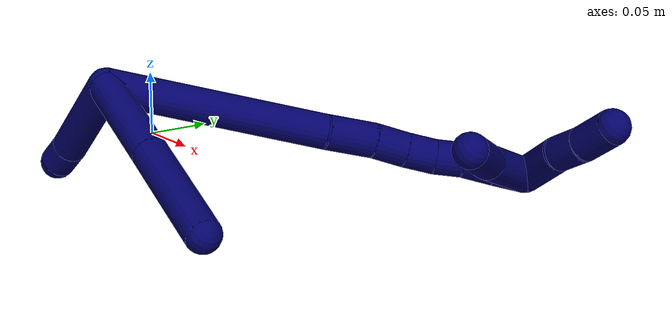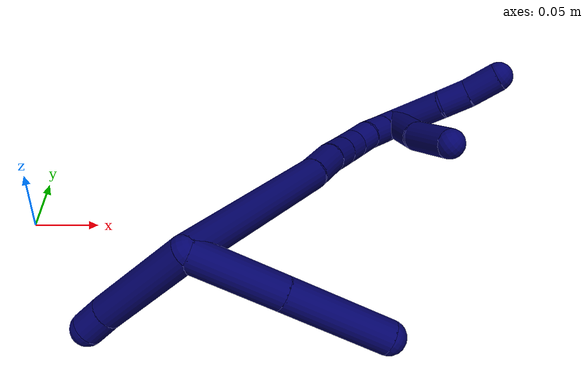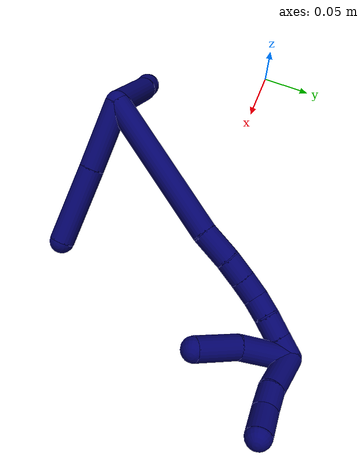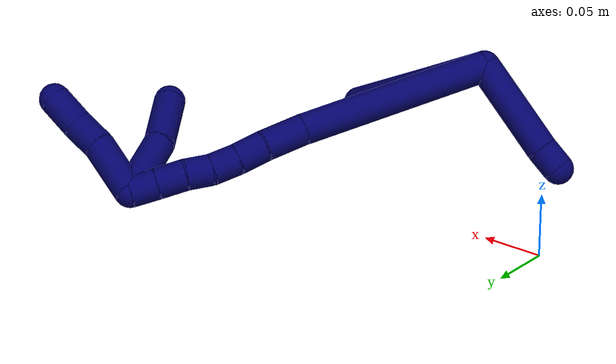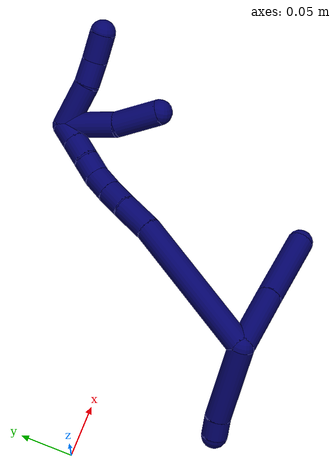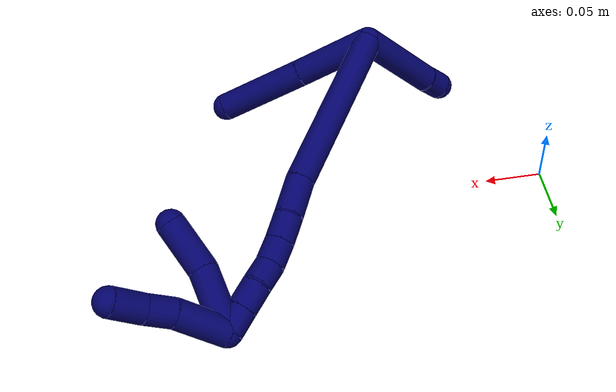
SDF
<sdf version="1.7">
 <world name="default">
  <model name="7">
   <static>0</static>
   <link name="7">
    <collision name="collision-cylinder-e_1_2_8">
     <pose>0.031511 -0.010184 0.01132 0.732612 1.12065 0.472385</pose>
     <geometry><cylinder><radius>0.0125</radius><length>0.069994</length></cylinder></geometry>
     <surface>
      <friction><ode><mu>1.16</mu><mu2>1.16</mu2><slip1>0</slip1><slip2>0</slip2></ode></friction>
      <contact><ode><kp>1e+06</kp><kd>1</kd><max_vel>0</max_vel><min_depth>0.001</min_depth></ode></contact>
     </surface>
    </collision>
    <visual name="visual-cylinder-e_1_2_8">
     <pose>0.031511 -0.010184 0.01132 0.732612 1.12065 0.472385</pose>
     <geometry><cylinder><radius>0.0125</radius><length>0.069994</length></cylinder></geometry>
     <material><ambient>0.003922 0 0.403922 1</ambient></material>
    </visual>
    <collision name="collision-cylinder-e_2_8_6">
     <pose>0.09883 -0.032383 0.035819 0.739254 1.10872 0.470842</pose>
     <geometry><cylinder><radius>0.0125</radius><length>0.080006</length></cylinder></geometry>
     <surface>
      <friction><ode><mu>1.16</mu><mu2>1.16</mu2><slip1>0</slip1><slip2>0</slip2></ode></friction>
      <contact><ode><kp>1e+06</kp><kd>1</kd><max_vel>0</max_vel><min_depth>0.001</min_depth></ode></contact>
     </surface>
    </collision>
    <visual name="visual-cylinder-e_2_8_6">
     <pose>0.09883 -0.032383 0.035819 0.739254 1.10872 0.470842</pose>
     <geometry><cylinder><radius>0.0125</radius><length>0.080006</length></cylinder></geometry>
     <material><ambient>0.003922 0 0.403922 1</ambient></material>
    </visual>
    <collision name="collision-cylinder-e_1_2_9">
     <pose>0.000787 0.001035 -0.039864 -3.11563 0.019724 -1.29938</pose>
     <geometry><cylinder><radius>0.0125</radius><length>0.079769</length></cylinder></geometry>
     <surface>
      <friction><ode><mu>1.16</mu><mu2>1.16</mu2><slip1>0</slip1><slip2>0</slip2></ode></friction>
      <contact><ode><kp>1e+06</kp><kd>1</kd><max_vel>0</max_vel><min_depth>0.001</min_depth></ode></contact>
     </surface>
    </collision>
    <visual name="visual-cylinder-e_1_2_9">
     <pose>0.000787 0.001035 -0.039864 -3.11563 0.019724 -1.29938</pose>
     <geometry><cylinder><radius>0.0125</radius><length>0.079769</length></cylinder></geometry>
     <material><ambient>0.003922 0 0.403922 1</ambient></material>
    </visual>
    <collision name="collision-cylinder-e_2_9_5">
     <pose>0.001452 0.001177 -0.089802 3.05314 -0.011969 -0.268837</pose>
     <geometry><cylinder><radius>0.0125</radius><length>0.020231</length></cylinder></geometry>
     <surface>
      <friction><ode><mu>1.16</mu><mu2>1.16</mu2><slip1>0</slip1><slip2>0</slip2></ode></friction>
      <contact><ode><kp>1e+06</kp><kd>1</kd><max_vel>0</max_vel><min_depth>0.001</min_depth></ode></contact>
     </surface>
    </collision>
    <visual name="visual-cylinder-e_2_9_5">
     <pose>0.001452 0.001177 -0.089802 3.05314 -0.011969 -0.268837</pose>
     <geometry><cylinder><radius>0.0125</radius><length>0.020231</length></cylinder></geometry>
     <material><ambient>0.003922 0 0.403922 1</ambient></material>
    </visual>
    <collision name="collision-cylinder-e_1_2_10">
     <pose>0.055015 0.050613 0.019951 -1.19531 0.790985 -0.553769</pose>
     <geometry><cylinder><radius>0.0125</radius><length>0.154743</length></cylinder></geometry>
     <surface>
      <friction><ode><mu>1.16</mu><mu2>1.16</mu2><slip1>0</slip1><slip2>0</slip2></ode></friction>
      <contact><ode><kp>1e+06</kp><kd>1</kd><max_vel>0</max_vel><min_depth>0.001</min_depth></ode></contact>
     </surface>
    </collision>
    <visual name="visual-cylinder-e_1_2_10">
     <pose>0.055015 0.050613 0.019951 -1.19531 0.790985 -0.553769</pose>
     <geometry><cylinder><radius>0.0125</radius><length>0.154743</length></cylinder></geometry>
     <material><ambient>0.003922 0 0.403922 1</ambient></material>
    </visual>
    <collision name="collision-cylinder-e_2_10_11">
     <pose>0.121255 0.113883 0.042951 -1.33441 0.711564 -0.569514</pose>
     <geometry><cylinder><radius>0.0125</radius><length>0.034381</length></cylinder></geometry>
     <surface>
      <friction><ode><mu>1.16</mu><mu2>1.16</mu2><slip1>0</slip1><slip2>0</slip2></ode></friction>
      <contact><ode><kp>1e+06</kp><kd>1</kd><max_vel>0</max_vel><min_depth>0.001</min_depth></ode></contact>
     </surface>
    </collision>
    <visual name="visual-cylinder-e_2_10_11">
     <pose>0.121255 0.113883 0.042951 -1.33441 0.711564 -0.569514</pose>
     <geometry><cylinder><radius>0.0125</radius><length>0.034381</length></cylinder></geometry>
     <material><ambient>0.003922 0 0.403922 1</ambient></material>
    </visual>
    <collision name="collision-cylinder-e_3_11_12">
     <pose>0.141106 0.134517 0.047565 -1.37711 0.815035 -0.682665</pose>
     <geometry><cylinder><radius>0.0125</radius><length>0.023705</length></cylinder></geometry>
     <surface>
      <friction><ode><mu>1.16</mu><mu2>1.16</mu2><slip1>0</slip1><slip2>0</slip2></ode></friction>
      <contact><ode><kp>1e+06</kp><kd>1</kd><max_vel>0</max_vel><min_depth>0.001</min_depth></ode></contact>
     </surface>
    </collision>
    <visual name="visual-cylinder-e_3_11_12">
     <pose>0.141106 0.134517 0.047565 -1.37711 0.815035 -0.682665</pose>
     <geometry><cylinder><radius>0.0125</radius><length>0.023705</length></cylinder></geometry>
     <material><ambient>0.003922 0 0.403922 1</ambient></material>
    </visual>
    <collision name="collision-cylinder-e_4_12_13">
     <pose>0.157501 0.149751 0.051404 -1.26712 0.796052 -0.599145</pose>
     <geometry><cylinder><radius>0.0125</radius><length>0.021745</length></cylinder></geometry>
     <surface>
      <friction><ode><mu>1.16</mu><mu2>1.16</mu2><slip1>0</slip1><slip2>0</slip2></ode></friction>
      <contact><ode><kp>1e+06</kp><kd>1</kd><max_vel>0</max_vel><min_depth>0.001</min_depth></ode></contact>
     </surface>
    </collision>
    <visual name="visual-cylinder-e_4_12_13">
     <pose>0.157501 0.149751 0.051404 -1.26712 0.796052 -0.599145</pose>
     <geometry><cylinder><radius>0.0125</radius><length>0.021745</length></cylinder></geometry>
     <material><ambient>0.003922 0 0.403922 1</ambient></material>
    </visual>
    <collision name="collision-cylinder-e_5_13_14">
     <pose>0.172179 0.163391 0.057767 -1.00104 0.73912 -0.417577</pose>
     <geometry><cylinder><radius>0.0125</radius><length>0.020511</length></cylinder></geometry>
     <surface>
      <friction><ode><mu>1.16</mu><mu2>1.16</mu2><slip1>0</slip1><slip2>0</slip2></ode></friction>
      <contact><ode><kp>1e+06</kp><kd>1</kd><max_vel>0</max_vel><min_depth>0.001</min_depth></ode></contact>
     </surface>
    </collision>
    <visual name="visual-cylinder-e_5_13_14">
     <pose>0.172179 0.163391 0.057767 -1.00104 0.73912 -0.417577</pose>
     <geometry><cylinder><radius>0.0125</radius><length>0.020511</length></cylinder></geometry>
     <material><ambient>0.003922 0 0.403922 1</ambient></material>
    </visual>
    <collision name="collision-cylinder-e_6_14_15">
     <pose>0.188023 0.176406 0.065401 -1.07988 0.871111 -0.544002</pose>
     <geometry><cylinder><radius>0.0125</radius><length>0.023359</length></cylinder></geometry>
     <surface>
      <friction><ode><mu>1.16</mu><mu2>1.16</mu2><slip1>0</slip1><slip2>0</slip2></ode></friction>
      <contact><ode><kp>1e+06</kp><kd>1</kd><max_vel>0</max_vel><min_depth>0.001</min_depth></ode></contact>
     </surface>
    </collision>
    <visual name="visual-cylinder-e_6_14_15">
     <pose>0.188023 0.176406 0.065401 -1.07988 0.871111 -0.544002</pose>
     <geometry><cylinder><radius>0.0125</radius><length>0.023359</length></cylinder></geometry>
     <material><ambient>0.003922 0 0.403922 1</ambient></material>
    </visual>
    <collision name="collision-cylinder-e_7_15_1">
     <pose>0.205068 0.189273 0.072346 -1.0716 0.851636 -0.526119</pose>
     <geometry><cylinder><radius>0.0125</radius><length>0.021557</length></cylinder></geometry>
     <surface>
      <friction><ode><mu>1.16</mu><mu2>1.16</mu2><slip1>0</slip1><slip2>0</slip2></ode></friction>
      <contact><ode><kp>1e+06</kp><kd>1</kd><max_vel>0</max_vel><min_depth>0.001</min_depth></ode></contact>
     </surface>
    </collision>
    <visual name="visual-cylinder-e_7_15_1">
     <pose>0.205068 0.189273 0.072346 -1.0716 0.851636 -0.526119</pose>
     <geometry><cylinder><radius>0.0125</radius><length>0.021557</length></cylinder></geometry>
     <material><ambient>0.003922 0 0.403922 1</ambient></material>
    </visual>
    <collision name="collision-cylinder-e_1_1_16">
     <pose>0.20407 0.172384 0.08678 1.12551 -0.341498 -0.216682</pose>
     <geometry><cylinder><radius>0.0125</radius><length>0.054383</length></cylinder></geometry>
     <surface>
      <friction><ode><mu>1.16</mu><mu2>1.16</mu2><slip1>0</slip1><slip2>0</slip2></ode></friction>
      <contact><ode><kp>1e+06</kp><kd>1</kd><max_vel>0</max_vel><min_depth>0.001</min_depth></ode></contact>
     </surface>
    </collision>
    <visual name="visual-cylinder-e_1_1_16">
     <pose>0.20407 0.172384 0.08678 1.12551 -0.341498 -0.216682</pose>
     <geometry><cylinder><radius>0.0125</radius><length>0.054383</length></cylinder></geometry>
     <material><ambient>0.003922 0 0.403922 1</ambient></material>
    </visual>
    <collision name="collision-cylinder-e_2_16_4">
     <pose>0.190908 0.13126 0.111223 0.930625 -0.178793 -0.089948</pose>
     <geometry><cylinder><radius>0.0125</radius><length>0.045617</length></cylinder></geometry>
     <surface>
      <friction><ode><mu>1.16</mu><mu2>1.16</mu2><slip1>0</slip1><slip2>0</slip2></ode></friction>
      <contact><ode><kp>1e+06</kp><kd>1</kd><max_vel>0</max_vel><min_depth>0.001</min_depth></ode></contact>
     </surface>
    </collision>
    <visual name="visual-cylinder-e_2_16_4">
     <pose>0.190908 0.13126 0.111223 0.930625 -0.178793 -0.089948</pose>
     <geometry><cylinder><radius>0.0125</radius><length>0.045617</length></cylinder></geometry>
     <material><ambient>0.003922 0 0.403922 1</ambient></material>
    </visual>
    <collision name="collision-cylinder-e_1_1_17">
     <pose>0.215838 0.190298 0.098403 0.225976 0.113968 0.012946</pose>
     <geometry><cylinder><radius>0.0125</radius><length>0.046803</length></cylinder></geometry>
     <surface>
      <friction><ode><mu>1.16</mu><mu2>1.16</mu2><slip1>0</slip1><slip2>0</slip2></ode></friction>
      <contact><ode><kp>1e+06</kp><kd>1</kd><max_vel>0</max_vel><min_depth>0.001</min_depth></ode></contact>
     </surface>
    </collision>
    <visual name="visual-cylinder-e_1_1_17">
     <pose>0.215838 0.190298 0.098403 0.225976 0.113968 0.012946</pose>
     <geometry><cylinder><radius>0.0125</radius><length>0.046803</length></cylinder></geometry>
     <material><ambient>0.003922 0 0.403922 1</ambient></material>
    </visual>
    <collision name="collision-cylinder-e_2_17_18">
     <pose>0.221638 0.18409 0.132911 0.084026 0.258108 0.010911</pose>
     <geometry><cylinder><radius>0.0125</radius><length>0.024596</length></cylinder></geometry>
     <surface>
      <friction><ode><mu>1.16</mu><mu2>1.16</mu2><slip1>0</slip1><slip2>0</slip2></ode></friction>
      <contact><ode><kp>1e+06</kp><kd>1</kd><max_vel>0</max_vel><min_depth>0.001</min_depth></ode></contact>
     </surface>
    </collision>
    <visual name="visual-cylinder-e_2_17_18">
     <pose>0.221638 0.18409 0.132911 0.084026 0.258108 0.010911</pose>
     <geometry><cylinder><radius>0.0125</radius><length>0.024596</length></cylinder></geometry>
     <material><ambient>0.003922 0 0.403922 1</ambient></material>
    </visual>
    <collision name="collision-cylinder-e_3_18_3">
     <pose>0.226907 0.182575 0.158891 0.036572 0.149461 0.002738</pose>
     <geometry><cylinder><radius>0.0125</radius><length>0.028601</length></cylinder></geometry>
     <surface>
      <friction><ode><mu>1.16</mu><mu2>1.16</mu2><slip1>0</slip1><slip2>0</slip2></ode></friction>
      <contact><ode><kp>1e+06</kp><kd>1</kd><max_vel>0</max_vel><min_depth>0.001</min_depth></ode></contact>
     </surface>
    </collision>
    <visual name="visual-cylinder-e_3_18_3">
     <pose>0.226907 0.182575 0.158891 0.036572 0.149461 0.002738</pose>
     <geometry><cylinder><radius>0.0125</radius><length>0.028601</length></cylinder></geometry>
     <material><ambient>0.003922 0 0.403922 1</ambient></material>
    </visual>
    <collision name="collision-sphere-3">
     <pose>0.229036 0.182058 0.173023 0 -0 0</pose>
     <geometry><sphere><radius>0.0125</radius></sphere></geometry>
     <surface>
      <friction><ode><mu>1.16</mu><mu2>1.16</mu2><slip1>0</slip1><slip2>0</slip2></ode></friction>
      <contact><ode><kp>1e+06</kp><kd>1</kd><max_vel>0</max_vel><min_depth>0.001</min_depth></ode></contact>
     </surface>
    </collision>
    <visual name="visual-sphere-3">
     <pose>0.229036 0.182058 0.173023 0 -0 0</pose>
     <geometry><sphere><radius>0.0125</radius></sphere></geometry>
     <material><ambient>0.003922 0 0.403922 1</ambient></material>
    </visual>
    <collision name="collision-sphere-10">
     <pose>0.11003 0.101226 0.039903 0 -0 0</pose>
     <geometry><sphere><radius>0.0125</radius></sphere></geometry>
     <surface>
      <friction><ode><mu>1.16</mu><mu2>1.16</mu2><slip1>0</slip1><slip2>0</slip2></ode></friction>
      <contact><ode><kp>1e+06</kp><kd>1</kd><max_vel>0</max_vel><min_depth>0.001</min_depth></ode></contact>
     </surface>
    </collision>
    <visual name="visual-sphere-10">
     <pose>0.11003 0.101226 0.039903 0 -0 0</pose>
     <geometry><sphere><radius>0.0125</radius></sphere></geometry>
     <material><ambient>0.003922 0 0.403922 1</ambient></material>
    </visual>
    <collision name="collision-sphere-5">
     <pose>0.001331 0.000283 -0.099877 0 -0 0</pose>
     <geometry><sphere><radius>0.0125</radius></sphere></geometry>
     <surface>
      <friction><ode><mu>1.16</mu><mu2>1.16</mu2><slip1>0</slip1><slip2>0</slip2></ode></friction>
      <contact><ode><kp>1e+06</kp><kd>1</kd><max_vel>0</max_vel><min_depth>0.001</min_depth></ode></contact>
     </surface>
    </collision>
    <visual name="visual-sphere-5">
     <pose>0.001331 0.000283 -0.099877 0 -0 0</pose>
     <geometry><sphere><radius>0.0125</radius></sphere></geometry>
     <material><ambient>0.003922 0 0.403922 1</ambient></material>
    </visual>
    <collision name="collision-sphere-6">
     <pose>0.134637 -0.044398 0.048997 0 -0 0</pose>
     <geometry><sphere><radius>0.0125</radius></sphere></geometry>
     <surface>
      <friction><ode><mu>1.16</mu><mu2>1.16</mu2><slip1>0</slip1><slip2>0</slip2></ode></friction>
      <contact><ode><kp>1e+06</kp><kd>1</kd><max_vel>0</max_vel><min_depth>0.001</min_depth></ode></contact>
     </surface>
    </collision>
    <visual name="visual-sphere-6">
     <pose>0.134637 -0.044398 0.048997 0 -0 0</pose>
     <geometry><sphere><radius>0.0125</radius></sphere></geometry>
     <material><ambient>0.003922 0 0.403922 1</ambient></material>
    </visual>
    <collision name="collision-sphere-9">
     <pose>0.001573 0.00207 -0.079727 0 -0 0</pose>
     <geometry><sphere><radius>0.0125</radius></sphere></geometry>
     <surface>
      <friction><ode><mu>1.16</mu><mu2>1.16</mu2><slip1>0</slip1><slip2>0</slip2></ode></friction>
      <contact><ode><kp>1e+06</kp><kd>1</kd><max_vel>0</max_vel><min_depth>0.001</min_depth></ode></contact>
     </surface>
    </collision>
    <visual name="visual-sphere-9">
     <pose>0.001573 0.00207 -0.079727 0 -0 0</pose>
     <geometry><sphere><radius>0.0125</radius></sphere></geometry>
     <material><ambient>0.003922 0 0.403922 1</ambient></material>
    </visual>
    <collision name="collision-sphere-2">
     <geometry><sphere><radius>0.0125</radius></sphere></geometry>
     <surface>
      <friction><ode><mu>1.16</mu><mu2>1.16</mu2><slip1>0</slip1><slip2>0</slip2></ode></friction>
      <contact><ode><kp>1e+06</kp><kd>1</kd><max_vel>0</max_vel><min_depth>0.001</min_depth></ode></contact>
     </surface>
    </collision>
    <visual name="visual-sphere-2">
     <geometry><sphere><radius>0.0125</radius></sphere></geometry>
     <material><ambient>0.003922 0 0.403922 1</ambient></material>
    </visual>
    <collision name="collision-sphere-8">
     <pose>0.063022 -0.020368 0.02264 0 -0 0</pose>
     <geometry><sphere><radius>0.0125</radius></sphere></geometry>
     <surface>
      <friction><ode><mu>1.16</mu><mu2>1.16</mu2><slip1>0</slip1><slip2>0</slip2></ode></friction>
      <contact><ode><kp>1e+06</kp><kd>1</kd><max_vel>0</max_vel><min_depth>0.001</min_depth></ode></contact>
     </surface>
    </collision>
    <visual name="visual-sphere-8">
     <pose>0.063022 -0.020368 0.02264 0 -0 0</pose>
     <geometry><sphere><radius>0.0125</radius></sphere></geometry>
     <material><ambient>0.003922 0 0.403922 1</ambient></material>
    </visual>
    <collision name="collision-sphere-11">
     <pose>0.132481 0.12654 0.046 0 -0 0</pose>
     <geometry><sphere><radius>0.0125</radius></sphere></geometry>
     <surface>
      <friction><ode><mu>1.16</mu><mu2>1.16</mu2><slip1>0</slip1><slip2>0</slip2></ode></friction>
      <contact><ode><kp>1e+06</kp><kd>1</kd><max_vel>0</max_vel><min_depth>0.001</min_depth></ode></contact>
     </surface>
    </collision>
    <visual name="visual-sphere-11">
     <pose>0.132481 0.12654 0.046 0 -0 0</pose>
     <geometry><sphere><radius>0.0125</radius></sphere></geometry>
     <material><ambient>0.003922 0 0.403922 1</ambient></material>
    </visual>
    <collision name="collision-sphere-12">
     <pose>0.149732 0.142494 0.04913 0 -0 0</pose>
     <geometry><sphere><radius>0.0125</radius></sphere></geometry>
     <surface>
      <friction><ode><mu>1.16</mu><mu2>1.16</mu2><slip1>0</slip1><slip2>0</slip2></ode></friction>
      <contact><ode><kp>1e+06</kp><kd>1</kd><max_vel>0</max_vel><min_depth>0.001</min_depth></ode></contact>
     </surface>
    </collision>
    <visual name="visual-sphere-12">
     <pose>0.149732 0.142494 0.04913 0 -0 0</pose>
     <geometry><sphere><radius>0.0125</radius></sphere></geometry>
     <material><ambient>0.003922 0 0.403922 1</ambient></material>
    </visual>
    <collision name="collision-sphere-13">
     <pose>0.165271 0.157009 0.053678 0 -0 0</pose>
     <geometry><sphere><radius>0.0125</radius></sphere></geometry>
     <surface>
      <friction><ode><mu>1.16</mu><mu2>1.16</mu2><slip1>0</slip1><slip2>0</slip2></ode></friction>
      <contact><ode><kp>1e+06</kp><kd>1</kd><max_vel>0</max_vel><min_depth>0.001</min_depth></ode></contact>
     </surface>
    </collision>
    <visual name="visual-sphere-13">
     <pose>0.165271 0.157009 0.053678 0 -0 0</pose>
     <geometry><sphere><radius>0.0125</radius></sphere></geometry>
     <material><ambient>0.003922 0 0.403922 1</ambient></material>
    </visual>
    <collision name="collision-sphere-14">
     <pose>0.179088 0.169773 0.061855 0 -0 0</pose>
     <geometry><sphere><radius>0.0125</radius></sphere></geometry>
     <surface>
      <friction><ode><mu>1.16</mu><mu2>1.16</mu2><slip1>0</slip1><slip2>0</slip2></ode></friction>
      <contact><ode><kp>1e+06</kp><kd>1</kd><max_vel>0</max_vel><min_depth>0.001</min_depth></ode></contact>
     </surface>
    </collision>
    <visual name="visual-sphere-14">
     <pose>0.179088 0.169773 0.061855 0 -0 0</pose>
     <geometry><sphere><radius>0.0125</radius></sphere></geometry>
     <material><ambient>0.003922 0 0.403922 1</ambient></material>
    </visual>
    <collision name="collision-sphere-15">
     <pose>0.196958 0.183039 0.068947 0 -0 0</pose>
     <geometry><sphere><radius>0.0125</radius></sphere></geometry>
     <surface>
      <friction><ode><mu>1.16</mu><mu2>1.16</mu2><slip1>0</slip1><slip2>0</slip2></ode></friction>
      <contact><ode><kp>1e+06</kp><kd>1</kd><max_vel>0</max_vel><min_depth>0.001</min_depth></ode></contact>
     </surface>
    </collision>
    <visual name="visual-sphere-15">
     <pose>0.196958 0.183039 0.068947 0 -0 0</pose>
     <geometry><sphere><radius>0.0125</radius></sphere></geometry>
     <material><ambient>0.003922 0 0.403922 1</ambient></material>
    </visual>
    <collision name="collision-sphere-1">
     <pose>0.213177 0.195507 0.075745 0 -0 0</pose>
     <geometry><sphere><radius>0.0125</radius></sphere></geometry>
     <surface>
      <friction><ode><mu>1.16</mu><mu2>1.16</mu2><slip1>0</slip1><slip2>0</slip2></ode></friction>
      <contact><ode><kp>1e+06</kp><kd>1</kd><max_vel>0</max_vel><min_depth>0.001</min_depth></ode></contact>
     </surface>
    </collision>
    <visual name="visual-sphere-1">
     <pose>0.213177 0.195507 0.075745 0 -0 0</pose>
     <geometry><sphere><radius>0.0125</radius></sphere></geometry>
     <material><ambient>0.003922 0 0.403922 1</ambient></material>
    </visual>
    <collision name="collision-sphere-18">
     <pose>0.224778 0.183092 0.14476 0 -0 0</pose>
     <geometry><sphere><radius>0.0125</radius></sphere></geometry>
     <surface>
      <friction><ode><mu>1.16</mu><mu2>1.16</mu2><slip1>0</slip1><slip2>0</slip2></ode></friction>
      <contact><ode><kp>1e+06</kp><kd>1</kd><max_vel>0</max_vel><min_depth>0.001</min_depth></ode></contact>
     </surface>
    </collision>
    <visual name="visual-sphere-18">
     <pose>0.224778 0.183092 0.14476 0 -0 0</pose>
     <geometry><sphere><radius>0.0125</radius></sphere></geometry>
     <material><ambient>0.003922 0 0.403922 1</ambient></material>
    </visual>
    <collision name="collision-sphere-16">
     <pose>0.194964 0.149261 0.097816 0 -0 0</pose>
     <geometry><sphere><radius>0.0125</radius></sphere></geometry>
     <surface>
      <friction><ode><mu>1.16</mu><mu2>1.16</mu2><slip1>0</slip1><slip2>0</slip2></ode></friction>
      <contact><ode><kp>1e+06</kp><kd>1</kd><max_vel>0</max_vel><min_depth>0.001</min_depth></ode></contact>
     </surface>
    </collision>
    <visual name="visual-sphere-16">
     <pose>0.194964 0.149261 0.097816 0 -0 0</pose>
     <geometry><sphere><radius>0.0125</radius></sphere></geometry>
     <material><ambient>0.003922 0 0.403922 1</ambient></material>
    </visual>
    <collision name="collision-sphere-4">
     <pose>0.186851 0.11326 0.12463 0 -0 0</pose>
     <geometry><sphere><radius>0.0125</radius></sphere></geometry>
     <surface>
      <friction><ode><mu>1.16</mu><mu2>1.16</mu2><slip1>0</slip1><slip2>0</slip2></ode></friction>
      <contact><ode><kp>1e+06</kp><kd>1</kd><max_vel>0</max_vel><min_depth>0.001</min_depth></ode></contact>
     </surface>
    </collision>
    <visual name="visual-sphere-4">
     <pose>0.186851 0.11326 0.12463 0 -0 0</pose>
     <geometry><sphere><radius>0.0125</radius></sphere></geometry>
     <material><ambient>0.003922 0 0.403922 1</ambient></material>
    </visual>
    <collision name="collision-sphere-17">
     <pose>0.218499 0.185088 0.121062 0 -0 0</pose>
     <geometry><sphere><radius>0.0125</radius></sphere></geometry>
     <surface>
      <friction><ode><mu>1.16</mu><mu2>1.16</mu2><slip1>0</slip1><slip2>0</slip2></ode></friction>
      <contact><ode><kp>1e+06</kp><kd>1</kd><max_vel>0</max_vel><min_depth>0.001</min_depth></ode></contact>
     </surface>
    </collision>
    <visual name="visual-sphere-17">
     <pose>0.218499 0.185088 0.121062 0 -0 0</pose>
     <geometry><sphere><radius>0.0125</radius></sphere></geometry>
     <material><ambient>0.003922 0 0.403922 1</ambient></material>
    </visual>
    <inertial>
     <pose>0.1118 0.080754 0.042607 0 -0 0</pose>
     <mass>0.75</mass>
     <inertia>
      <ixx>0.000152</ixx>
      <ixy>0</ixy>
      <ixz>0</ixz>
      <iyy>0.000154</iyy>
      <iyz>0</iyz>
      <izz>-0.000455</izz>
     </inertia>
    </inertial>
   </link>
   <pose>0.137042 -0.115808 0.081696 0.216066 0.788755 0.345885</pose>
  </model>
 </world>
</sdf>
